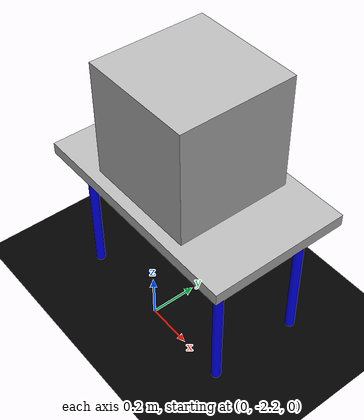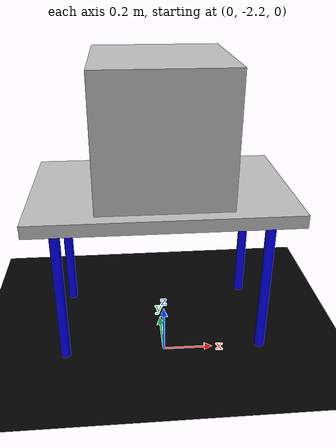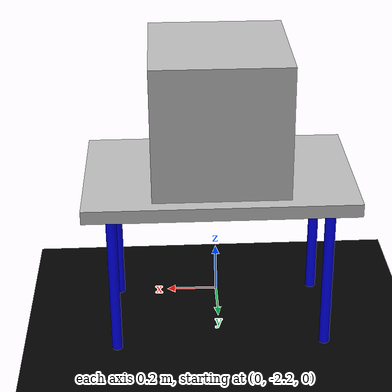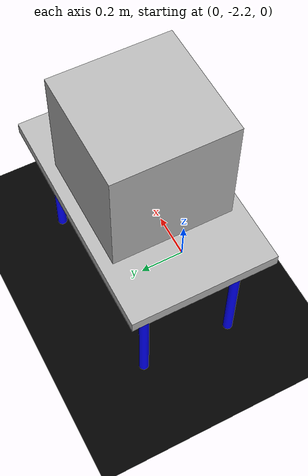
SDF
<?xml version="1.0" ?>
<sdf version="1.6">
  <world name="default">

    <model name="ground_plane">
      <static>true</static>
      <link name="link">

        <visual name="ground_visual">
          <geometry>
            <plane>
              <normal>0 0 1</normal>
              <size>100 100</size>
            </plane>
          </geometry>
          <material>
            <diffuse>0 0 0 0.4</diffuse>
          </material>
        </visual>
        <collision name="ground_collision">
          <geometry>
            <plane>
              <normal>0 0 1</normal>
              <size>100 100</size>
            </plane>
          </geometry>
        </collision>

      </link>
    </model>

    <model name="table">
      <static>true</static>
      <link name="leg_fl_link">
        <pose>-0.4 -2.2 0.3 0 0 0</pose>
        <visual name="fl_visual">
          <geometry>
            <cylinder>
              <radius>0.02</radius>
              <length>0.6</length>
            </cylinder>
          </geometry>
          <material>
            <diffuse>0 0 1 1</diffuse>
          </material>
        </visual>
        <collision name="fl_collision">
          <geometry>
            <cylinder>
              <radius>0.02</radius>
              <length>0.6</length>
            </cylinder>
          </geometry>
        </collision>

      </link>

      <link name="leg_rl_link">
        <pose>0.4 -2.2 0.3 0 0 0</pose>
        <visual name="rl_visual">
          <geometry>
            <cylinder>
              <radius>0.02</radius>
              <length>0.6</length>
            </cylinder>
          </geometry>
          <material>
            <diffuse>0 0 1 1</diffuse>
          </material>
        </visual>
        <collision name="rl_collision">
          <geometry>
            <cylinder>
              <radius>0.02</radius>
              <length>0.6</length>
            </cylinder>
          </geometry>
        </collision>
      </link>

      <link name="leg_fr_link">
        <pose>-0.4 -1.8 0.3 0 0 0</pose>
        <visual name="fr_visual">
          <geometry>
            <cylinder>
              <radius>0.02</radius>
              <length>0.6</length>
            </cylinder>
          </geometry>
          <material>
            <diffuse>0 0 1 1</diffuse>
          </material>
        </visual>
        <collision name="fr_collision">
          <geometry>
            <cylinder>
              <radius>0.02</radius>
              <length>0.6</length>
            </cylinder>
          </geometry>
        </collision>
      </link>

      <link name="leg_rr_link">
        <pose>0.4 -1.8 0.3 0 0 0</pose>
        <visual name="rr_visual">
          <geometry>
            <cylinder>
              <radius>0.02</radius>
              <length>0.6</length>
            </cylinder>
          </geometry>
          <material>
            <diffuse>0 0 1 1</diffuse>
          </material>
        </visual>
        <collision name="rr_collision">
          <geometry>
            <cylinder>
              <radius>0.02</radius>
              <length>0.6</length>
            </cylinder>
          </geometry>
        </collision>
      </link>

      <link name="table_top_link">
        <pose>0 -2 0.625 0 0 0</pose>
        <visual name="table_top_visual">
          <geometry>
            <box>
              <size>1 0.6 0.05</size>
            </box>
          </geometry>
          <material>
          </material>
        </visual>
        <collision name="table_top_collision">
          <geometry>
            <box>
              <size>1 0.6 0.05</size>
            </box>
          </geometry>
        </collision>
      </link>
    </model>

    <model name='aruco_box'>
      <pose>0 -2 0.9 0 -0 1.5708</pose>
      <link name='link'>
        <collision name='aruco_box_collision'>
          <geometry>
            <mesh>
              <uri>file:///home/ishan/OpenDroids_ws/src/aruco_cube/aruco_box/model.dae</uri>
              <scale>0.25 0.25 0.25</scale>
            </mesh>
          </geometry>
        </collision>
        <material>
          <diffuse>0 0 0 0.8</diffuse>
        </material>

        <visual name='aruco_box_mesh'>
          <geometry>
            <mesh>
              <uri>file:///home/ishan/OpenDroids_ws/src/aruco_cube/aruco_box/model.dae</uri>
              <scale>0.25 0.25 0.25</scale>
            </mesh>
          </geometry>
        </visual>

        <self_collide>0</self_collide>
        <enable_wind>0</enable_wind>
        <kinematic>0</kinematic>
      </link>
    </model>
  </world>
</sdf>
